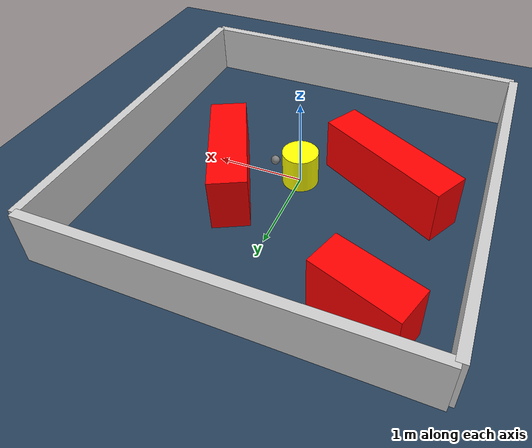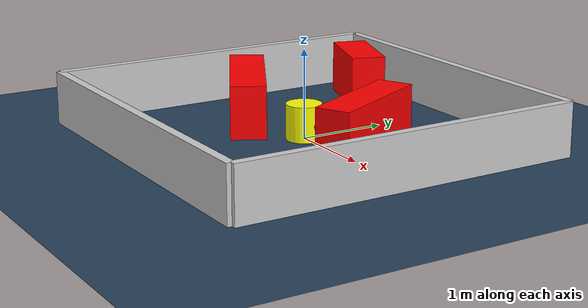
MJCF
<?xml version="1.0" ?>
<mujoco model="generated_environment">
  <option timestep="0.01" integrator="RK4" cone="elliptic"/>
  <default>
    <geom density="1"/>
  </default>
  <asset>
    <texture builtin="gradient" height="3072" rgb1="0.3 0.5 0.7" rgb2="0 0 0" type="skybox" width="512"/>
    <texture builtin="checker" height="300" mark="edge" markrgb="0.8 0.8 0.8" name="groundplane" rgb1="0.2 0.3 0.4" rgb2="0.1 0.2 0.3" type="2d" width="300"/>
    <material name="groundplane" reflectance="0.2" texrepeat="5 5" texture="groundplane" texuniform="true"/>
    <material name="robot" rgba="0.0 1.0 0.0 1"/>
  </asset>
  <worldbody>
    <light dir="0 0 -1" directional="true" pos="0 0 1.5"/>
    <geom condim="4" friction="1.0 0.005 0.001" material="groundplane" name="floor" size="0 0 0.05" type="plane"/>
    <body name="walls">
      <geom name="wall_1" condim="4" pos="-2.0 0.0 0.3" rgba="0.800000011920929 0.800000011920929 0.800000011920929 1.0" size="0.05 2.0 0.3" type="box"/>
      <geom name="wall_2" condim="4" pos="2.0 0.0 0.3" rgba="0.800000011920929 0.800000011920929 0.800000011920929 1.0" size="0.05 2.0 0.3" type="box"/>
      <geom name="wall_3" condim="4" pos="0.0 -2.0 0.3" rgba="0.800000011920929 0.800000011920929 0.800000011920929 1.0" size="2.0 0.05 0.3" type="box"/>
      <geom name="wall_4" condim="4" pos="0.0 2.0 0.3" rgba="0.800000011920929 0.800000011920929 0.800000011920929 1.0" size="2.0 0.05 0.3" type="box"/>
    </body>
    <body name="robot">
      <joint name="joint_x" type="slide" pos="0 0 0" axis="1 0 0"/>
      <joint name="joint_y" type="slide" pos="0 0 0" axis="0 1 0"/>
      <geom name="robot" type="sphere" pos="0.3 0.0 0.2" size="0.05" mass="5." friction="1.0 0.005 0.0001" condim="4" rgba="0.5 0.5 0.5 1.0"/>
      <site name="sensor_ball"/>
    </body>
    <body name="obstacle_movable_1">
      <geom name="obstacle_movable_1" condim="4" pos="0.0 0.0 0.2" euler="0 0 0.0" friction="1.0 0.005 0.001" rgba="1.0 1.0 0.0 1.0" size="0.2 0.2 0.0" type="cylinder" mass="0.1"/>
      <joint type="free"/>
    </body>
    <body name="obstacle_2_static">
      <geom name="obstacle_2_static" condim="4" pos="-0.9548428727743632 -0.1664687471419144 0.3" euler="0 0 151.1612981769869" friction="1.0 0.005 0.001" rgba="1 0 0 1" size="0.7702110766474948 0.2 0.3" type="box"/>
    </body>
    <body name="obstacle_3_static">
      <geom name="obstacle_3_static" condim="4" pos="-1.1663288472068023 1.5036653040600505 0.3" euler="0 0 160.78667546082661" friction="1.0 0.005 0.001" rgba="1 0 0 1" size="0.46492788552773634 0.2 0.3" type="box"/>
    </body>
    <body name="obstacle_4_static">
      <geom name="obstacle_4_static" condim="4" pos="0.6962033352091601 0.3237366243293611 0.3" euler="0 0 296.5606236072688" friction="1.0 0.005 0.001" rgba="1 0 0 1" size="0.6866809736986017 0.2 0.3" type="box"/>
    </body>
  </worldbody>
  <actuator>
    <motor name="actuator_x" joint="joint_x" gear="1" ctrlrange="-1 1"/>
    <motor name="actuator_y" joint="joint_y" gear="1" ctrlrange="-1 1"/>
  </actuator>
</mujoco>
